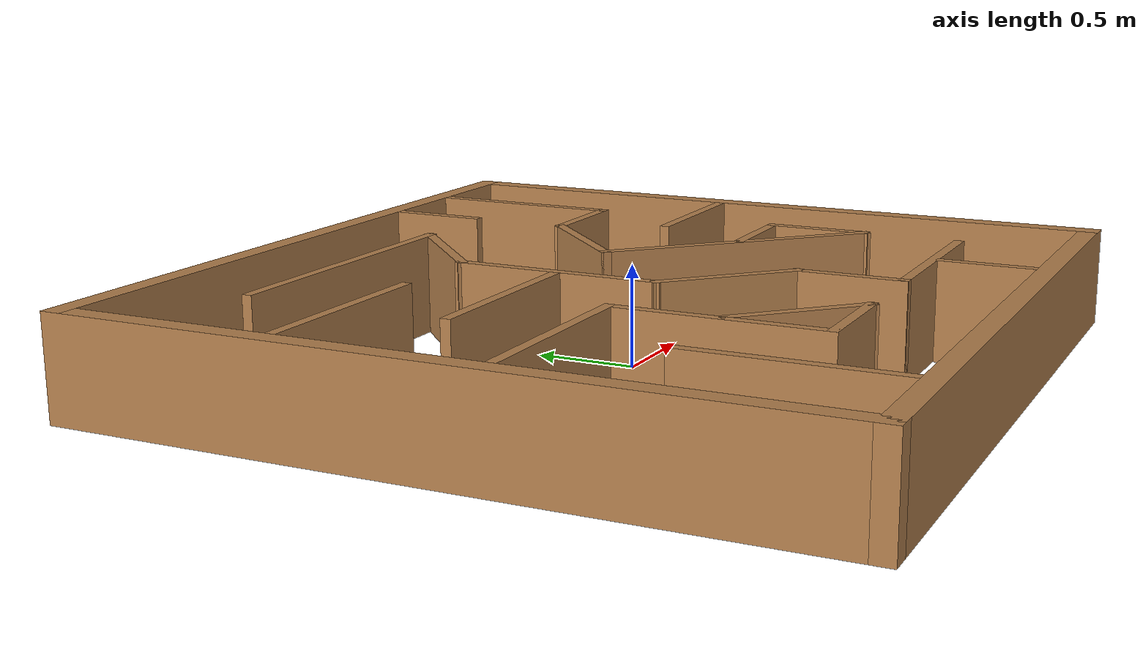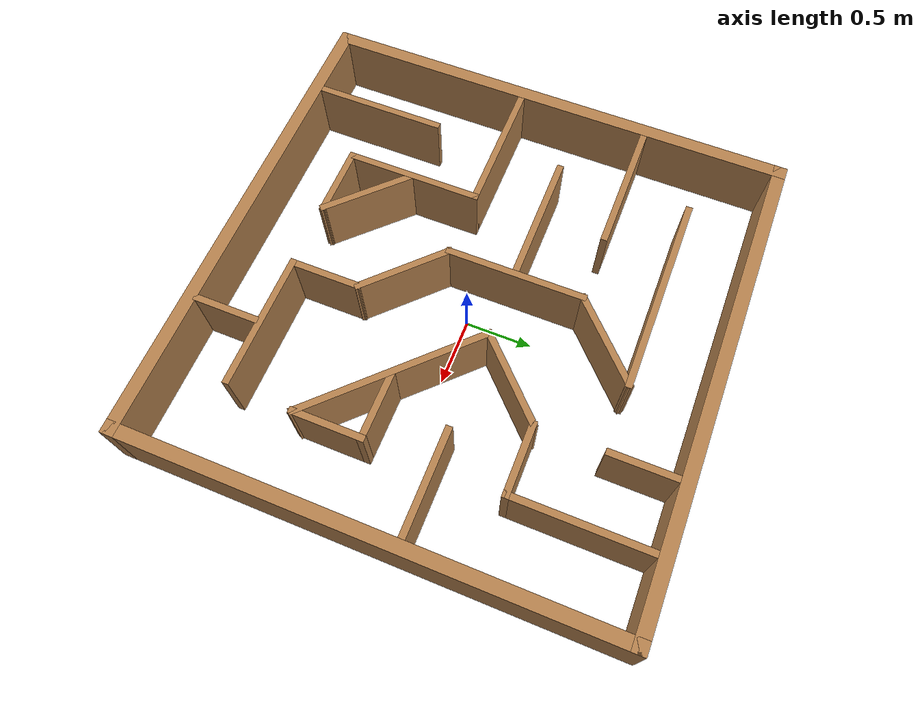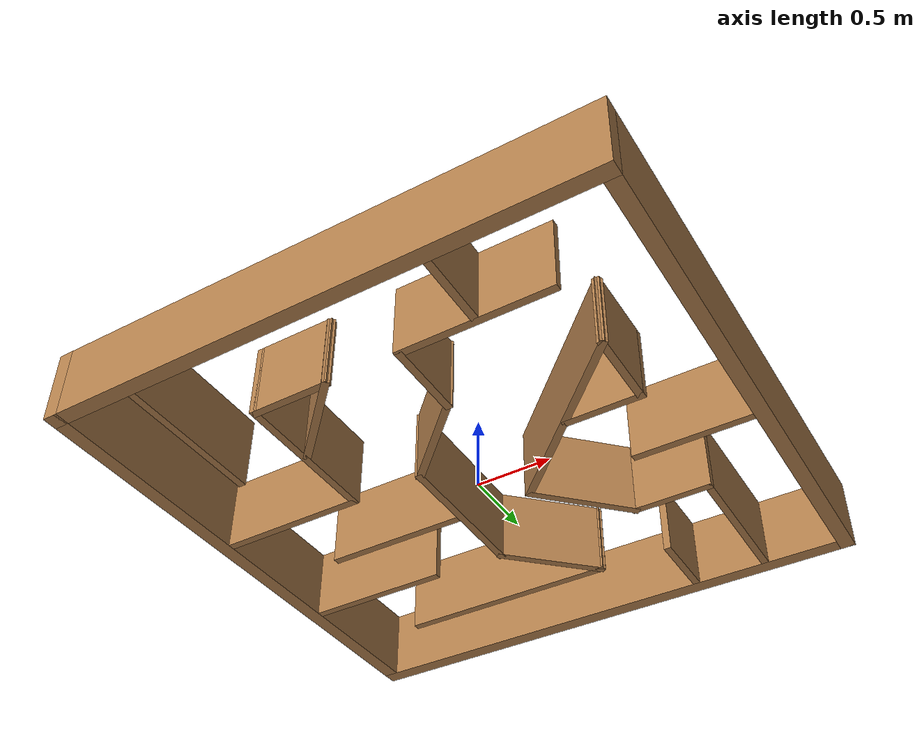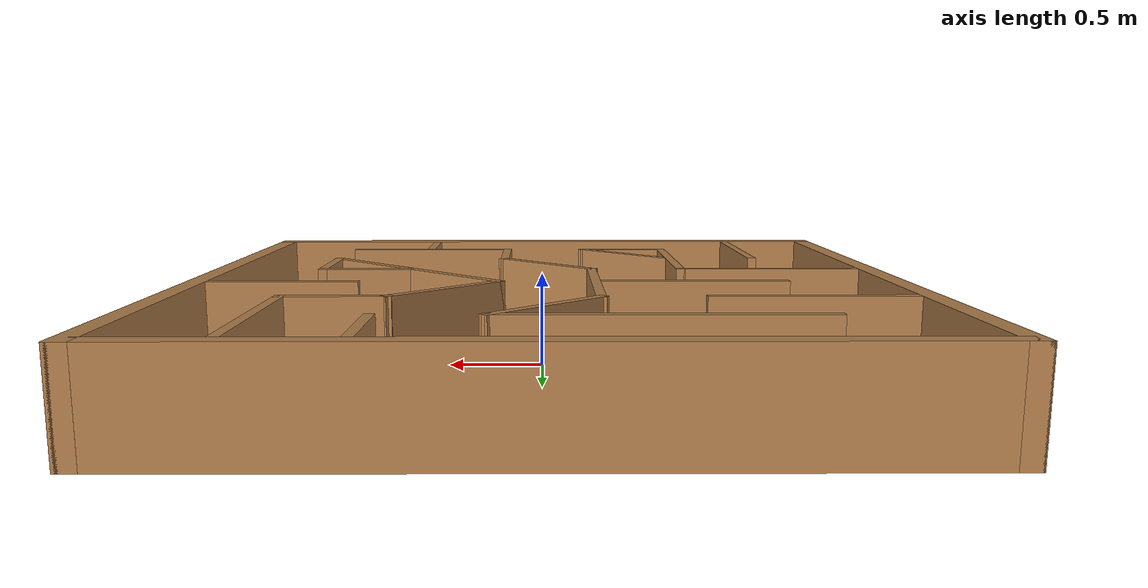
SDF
<?xml version='1.0'?>
<sdf version='1.7'>
  <model name='maze'>
    <pose>-0.025 0.005 0 0 -0 0</pose>
    <link name='Wall_10'>
      <collision name='Wall_10_Collision'>
        <geometry>
          <box>
            <size>1.02 0.05 0.5</size>
          </box>
        </geometry>
        <pose>0 0 0.25 0 -0 0</pose>
      </collision>
      <visual name='Wall_10_Visual'>
        <pose>0 0 0.25 0 -0 0</pose>
        <geometry>
          <box>
            <size>1.02 0.05 0.5</size>
          </box>
        </geometry>
        <material>
          <script>
            <uri>file://materials/scripts/seamless_wood.material</uri>
            <name>Team08/SeamlessWood</name>
          </script>
          <ambient>1 1 1 1</ambient>
        </material>
        <meta>
          <layer>0</layer>
        </meta>
      </visual>
      <pose>1.25 1.235 0 0 -0 -1.5708</pose>
    </link>
    <link name='Wall_12'>
      <collision name='Wall_12_Collision'>
        <geometry>
          <box>
            <size>0.5 0.05 0.5</size>
          </box>
        </geometry>
        <pose>0 0 0.25 0 -0 0</pose>
      </collision>
      <visual name='Wall_12_Visual'>
        <pose>0 0 0.25 0 -0 0</pose>
        <geometry>
          <box>
            <size>0.5 0.05 0.5</size>
          </box>
        </geometry>
        <material>
          <script>
            <uri>file://materials/scripts/seamless_wood.material</uri>
            <name>Team08/SeamlessWood</name>
          </script>
          <ambient>1 1 1 1</ambient>
        </material>
        <meta>
          <layer>0</layer>
        </meta>
      </visual>
      <pose>0.75 1.495 0 0 -0 -1.5708</pose>
    </link>
    <link name='Wall_16'>
      <collision name='Wall_16_Collision'>
        <geometry>
          <box>
            <size>0.55 0.05 0.5</size>
          </box>
        </geometry>
        <pose>0 0 0.25 0 -0 0</pose>
      </collision>
      <visual name='Wall_16_Visual'>
        <pose>0 0 0.25 0 -0 0</pose>
        <geometry>
          <box>
            <size>0.55 0.05 0.5</size>
          </box>
        </geometry>
        <material>
          <script>
            <uri>file://materials/scripts/seamless_wood.material</uri>
            <name>Team08/SeamlessWood</name>
          </script>
          <ambient>1 1 1 1</ambient>
        </material>
        <meta>
          <layer>0</layer>
        </meta>
      </visual>
      <pose>1 0.75 0 0 -0 3.14159</pose>
    </link>
    <link name='Wall_18'>
      <collision name='Wall_18_Collision'>
        <geometry>
          <box>
            <size>0.757107 0.05 0.5</size>
          </box>
        </geometry>
        <pose>0 0 0.25 0 -0 0</pose>
      </collision>
      <visual name='Wall_18_Visual'>
        <pose>0 0 0.25 0 -0 0</pose>
        <geometry>
          <box>
            <size>0.757107 0.05 0.5</size>
          </box>
        </geometry>
        <material>
          <script>
            <uri>file://materials/scripts/seamless_wood.material</uri>
            <name>Team08/SeamlessWood</name>
          </script>
          <ambient>1 1 1 1</ambient>
        </material>
        <meta>
          <layer>0</layer>
        </meta>
      </visual>
      <pose>0.5 0.5 0 0 -0 -2.35619</pose>
    </link>
    <link name='Wall_2'>
      <collision name='Wall_2_Collision'>
        <geometry>
          <box>
            <size>3.69 0.1 0.5</size>
          </box>
        </geometry>
        <pose>0 0 0.25 0 -0 0</pose>
      </collision>
      <visual name='Wall_2_Visual'>
        <pose>0 0 0.25 0 -0 0</pose>
        <geometry>
          <box>
            <size>3.69 0.1 0.5</size>
          </box>
        </geometry>
        <material>
          <script>
            <uri>file://materials/scripts/seamless_wood.material</uri>
            <name>Team08/SeamlessWood</name>
          </script>
          <ambient>0.509804 0.478431 0.490196 1</ambient>
        </material>
        <meta>
          <layer>0</layer>
        </meta>
      </visual>
      <pose>0 1.795 0 0 -0 0</pose>
    </link>
    <link name='Wall_20'>
      <collision name='Wall_20_Collision'>
        <geometry>
          <box>
            <size>1.46421 0.05 0.5</size>
          </box>
        </geometry>
        <pose>0 0 0.25 0 -0 0</pose>
      </collision>
      <visual name='Wall_20_Visual'>
        <pose>0 0 0.25 0 -0 0</pose>
        <geometry>
          <box>
            <size>1.46421 0.05 0.5</size>
          </box>
        </geometry>
        <material>
          <script>
            <uri>file://materials/scripts/seamless_wood.material</uri>
            <name>Team08/SeamlessWood</name>
          </script>
          <ambient>1 1 1 1</ambient>
        </material>
        <meta>
          <layer>0</layer>
        </meta>
      </visual>
      <pose>0.75 -0.25 0 0 -0 -0.785398</pose>
    </link>
    <link name='Wall_22'>
      <collision name='Wall_22_Collision'>
        <geometry>
          <box>
            <size>0.55 0.05 0.5</size>
          </box>
        </geometry>
        <pose>0 0 0.25 0 -0 0</pose>
      </collision>
      <visual name='Wall_22_Visual'>
        <pose>0 0 0.25 0 -0 0</pose>
        <geometry>
          <box>
            <size>0.55 0.05 0.5</size>
          </box>
        </geometry>
        <material>
          <script>
            <uri>file://materials/scripts/seamless_wood.material</uri>
            <name>Team08/SeamlessWood</name>
          </script>
          <ambient>1 1 1 1</ambient>
        </material>
        <meta>
          <layer>0</layer>
        </meta>
      </visual>
      <pose>1.25 -0.5 0 0 -0 1.5708</pose>
    </link>
    <link name='Wall_24'>
      <collision name='Wall_24_Collision'>
        <geometry>
          <box>
            <size>0.53 0.05 0.5</size>
          </box>
        </geometry>
        <pose>0 0 0.25 0 -0 0</pose>
      </collision>
      <visual name='Wall_24_Visual'>
        <pose>0 0 0.25 0 -0 0</pose>
        <geometry>
          <box>
            <size>0.53 0.05 0.5</size>
          </box>
        </geometry>
        <material>
          <script>
            <uri>file://materials/scripts/seamless_wood.material</uri>
            <name>Team08/SeamlessWood</name>
          </script>
          <ambient>1 1 1 1</ambient>
        </material>
        <meta>
          <layer>0</layer>
        </meta>
      </visual>
      <pose>1.01 -0.25 0 0 -0 3.14159</pose>
    </link>
    <link name='Wall_26'>
      <collision name='Wall_26_Collision'>
        <geometry>
          <box>
            <size>0.78 0.05 0.5</size>
          </box>
        </geometry>
        <pose>0 0 0.25 0 -0 0</pose>
      </collision>
      <visual name='Wall_26_Visual'>
        <pose>0 0 0.25 0 -0 0</pose>
        <geometry>
          <box>
            <size>0.78 0.05 0.5</size>
          </box>
        </geometry>
        <material>
          <script>
            <uri>file://materials/scripts/seamless_wood.material</uri>
            <name>Team08/SeamlessWood</name>
          </script>
          <ambient>1 1 1 1</ambient>
        </material>
        <meta>
          <layer>0</layer>
        </meta>
      </visual>
      <pose>1.355 0.25 0 0 -0 3.14159</pose>
    </link>
    <link name='Wall_28'>
      <collision name='Wall_28_Collision'>
        <geometry>
          <box>
            <size>0.5 0.05 0.5</size>
          </box>
        </geometry>
        <pose>0 0 0.25 0 -0 0</pose>
      </collision>
      <visual name='Wall_28_Visual'>
        <pose>0 0 0.25 0 -0 0</pose>
        <geometry>
          <box>
            <size>0.5 0.05 0.5</size>
          </box>
        </geometry>
        <material>
          <script>
            <uri>file://materials/scripts/seamless_wood.material</uri>
            <name>Team08/SeamlessWood</name>
          </script>
          <ambient>1 1 1 1</ambient>
        </material>
        <meta>
          <layer>0</layer>
        </meta>
      </visual>
      <pose>0.75 -1.515 0 0 -0 1.5708</pose>
    </link>
    <link name='Wall_30'>
      <collision name='Wall_30_Collision'>
        <geometry>
          <box>
            <size>1 0.05 0.5</size>
          </box>
        </geometry>
        <pose>0 0 0.25 0 -0 0</pose>
      </collision>
      <visual name='Wall_30_Visual'>
        <pose>0 0 0.25 0 -0 0</pose>
        <geometry>
          <box>
            <size>1 0.05 0.5</size>
          </box>
        </geometry>
        <material>
          <script>
            <uri>file://materials/scripts/seamless_wood.material</uri>
            <name>Team08/SeamlessWood</name>
          </script>
          <ambient>1 1 1 1</ambient>
        </material>
        <meta>
          <layer>0</layer>
        </meta>
      </visual>
      <pose>-1.25 -1.245 0 0 -0 1.5708</pose>
    </link>
    <link name='Wall_32'>
      <collision name='Wall_32_Collision'>
        <geometry>
          <box>
            <size>1 0.05 0.5</size>
          </box>
        </geometry>
        <pose>0 0 0.25 0 -0 0</pose>
      </collision>
      <visual name='Wall_32_Visual'>
        <pose>0 0 0.25 0 -0 0</pose>
        <geometry>
          <box>
            <size>1 0.05 0.5</size>
          </box>
        </geometry>
        <material>
          <script>
            <uri>file://materials/scripts/seamless_wood.material</uri>
            <name>Team08/SeamlessWood</name>
          </script>
          <ambient>1 1 1 1</ambient>
        </material>
        <meta>
          <layer>0</layer>
        </meta>
      </visual>
      <pose>-1.245 0.75 0 0 -0 0</pose>
    </link>
    <link name='Wall_34'>
      <collision name='Wall_34_Collision'>
        <geometry>
          <box>
            <size>1.02 0.05 0.5</size>
          </box>
        </geometry>
        <pose>0 0 0.25 0 -0 0</pose>
      </collision>
      <visual name='Wall_34_Visual'>
        <pose>0 0 0.25 0 -0 0</pose>
        <geometry>
          <box>
            <size>1.02 0.05 0.5</size>
          </box>
        </geometry>
        <material>
          <script>
            <uri>file://materials/scripts/seamless_wood.material</uri>
            <name>Team08/SeamlessWood</name>
          </script>
          <ambient>1 1 1 1</ambient>
        </material>
        <meta>
          <layer>0</layer>
        </meta>
      </visual>
      <pose>-1.235 -0.25 0 0 -0 0</pose>
    </link>
    <link name='Wall_36'>
      <collision name='Wall_36_Collision'>
        <geometry>
          <box>
            <size>1.05 0.05 0.5</size>
          </box>
        </geometry>
        <pose>0 0 0.25 0 -0 0</pose>
      </collision>
      <visual name='Wall_36_Visual'>
        <pose>0 0 0.25 0 -0 0</pose>
        <geometry>
          <box>
            <size>1.05 0.05 0.5</size>
          </box>
        </geometry>
        <material>
          <script>
            <uri>file://materials/scripts/seamless_wood.material</uri>
            <name>Team08/SeamlessWood</name>
          </script>
          <ambient>1 1 1 1</ambient>
        </material>
        <meta>
          <layer>0</layer>
        </meta>
      </visual>
      <pose>-0.75 -0.75 0 0 -0 -1.5708</pose>
    </link>
    <link name='Wall_38'>
      <collision name='Wall_38_Collision'>
        <geometry>
          <box>
            <size>0.55 0.05 0.5</size>
          </box>
        </geometry>
        <pose>0 0 0.25 0 -0 0</pose>
      </collision>
      <visual name='Wall_38_Visual'>
        <pose>0 0 0.25 0 -0 0</pose>
        <geometry>
          <box>
            <size>0.55 0.05 0.5</size>
          </box>
        </geometry>
        <material>
          <script>
            <uri>file://materials/scripts/seamless_wood.material</uri>
            <name>Team08/SeamlessWood</name>
          </script>
          <ambient>1 1 1 1</ambient>
        </material>
        <meta>
          <layer>0</layer>
        </meta>
      </visual>
      <pose>-0.5 -1.25 0 0 -0 0</pose>
    </link>
    <link name='Wall_4'>
      <collision name='Wall_4_Collision'>
        <geometry>
          <box>
            <size>3.69 0.1 0.5</size>
          </box>
        </geometry>
        <pose>0 0 0.25 0 -0 0</pose>
      </collision>
      <visual name='Wall_4_Visual'>
        <pose>0 0 0.25 0 -0 0</pose>
        <geometry>
          <box>
            <size>3.69 0.1 0.5</size>
          </box>
        </geometry>
        <material>
          <script>
            <uri>file://materials/scripts/seamless_wood.material</uri>
            <name>Team08/SeamlessWood</name>
          </script>
          <ambient>0.509804 0.478431 0.490196 1</ambient>
        </material>
        <meta>
          <layer>0</layer>
        </meta>
      </visual>
      <pose>1.795 0 0 0 -0 -1.5708</pose>
    </link>
    <link name='Wall_40'>
      <collision name='Wall_40_Collision'>
        <geometry>
          <box>
            <size>0.725 0.05 0.5</size>
          </box>
        </geometry>
        <pose>0 0 0.25 0 -0 0</pose>
      </collision>
      <visual name='Wall_40_Visual'>
        <pose>0 0 0.25 0 -0 0</pose>
        <geometry>
          <box>
            <size>0.725 0.05 0.5</size>
          </box>
        </geometry>
        <material>
          <script>
            <uri>file://materials/scripts/seamless_wood.material</uri>
            <name>Team08/SeamlessWood</name>
          </script>
          <ambient>1 1 1 1</ambient>
        </material>
        <meta>
          <layer>0</layer>
        </meta>
      </visual>
      <pose>-0.4885 -1.0115 0 0 -0 2.35619</pose>
    </link>
    <link name='Wall_42'>
      <collision name='Wall_42_Collision'>
        <geometry>
          <box>
            <size>1.525 0.05 0.5</size>
          </box>
        </geometry>
        <pose>0 0 0.25 0 -0 0</pose>
      </collision>
      <visual name='Wall_42_Visual'>
        <pose>0 0 0.25 0 -0 0</pose>
        <geometry>
          <box>
            <size>1.525 0.05 0.5</size>
          </box>
        </geometry>
        <material>
          <script>
            <uri>file://materials/scripts/seamless_wood.material</uri>
            <name>Team08/SeamlessWood</name>
          </script>
          <ambient>1 1 1 1</ambient>
        </material>
        <meta>
          <layer>0</layer>
        </meta>
      </visual>
      <pose>-0.4825 1.25 0 0 -0 0</pose>
    </link>
    <link name='Wall_44'>
      <collision name='Wall_44_Collision'>
        <geometry>
          <box>
            <size>0.753651 0.05 0.5</size>
          </box>
        </geometry>
        <pose>0 0 0.25 0 -0 0</pose>
      </collision>
      <visual name='Wall_44_Visual'>
        <pose>0 0 0.25 0 -0 0</pose>
        <geometry>
          <box>
            <size>0.753651 0.05 0.5</size>
          </box>
        </geometry>
        <material>
          <script>
            <uri>file://materials/scripts/seamless_wood.material</uri>
            <name>Team08/SeamlessWood</name>
          </script>
          <ambient>1 1 1 1</ambient>
        </material>
        <meta>
          <layer>0</layer>
        </meta>
      </visual>
      <pose>0.0025 1.005 0 0 -0 -2.37127</pose>
    </link>
    <link name='Wall_46'>
      <collision name='Wall_46_Collision'>
        <geometry>
          <box>
            <size>1.06 0.05 0.5</size>
          </box>
        </geometry>
        <pose>0 0 0.25 0 -0 0</pose>
      </collision>
      <visual name='Wall_46_Visual'>
        <pose>0 0 0.25 0 -0 0</pose>
        <geometry>
          <box>
            <size>1.06 0.05 0.5</size>
          </box>
        </geometry>
        <material>
          <script>
            <uri>file://materials/scripts/seamless_wood.material</uri>
            <name>Team08/SeamlessWood</name>
          </script>
          <ambient>1 1 1 1</ambient>
        </material>
        <meta>
          <layer>0</layer>
        </meta>
      </visual>
      <pose>-0.25 0.255 0 0 -0 -1.5708</pose>
    </link>
    <link name='Wall_48'>
      <collision name='Wall_48_Collision'>
        <geometry>
          <box>
            <size>0.970001 0.05 0.5</size>
          </box>
        </geometry>
        <pose>0 0 0.25 0 -0 0</pose>
      </collision>
      <visual name='Wall_48_Visual'>
        <pose>0 0 0.25 0 -0 0</pose>
        <geometry>
          <box>
            <size>0.970001 0.05 0.5</size>
          </box>
        </geometry>
        <material>
          <script>
            <uri>file://materials/scripts/seamless_wood.material</uri>
            <name>Team08/SeamlessWood</name>
          </script>
          <ambient>1 1 1 1</ambient>
        </material>
        <meta>
          <layer>0</layer>
        </meta>
      </visual>
      <pose>-0.76 0.249 0 0 -0 3.14159</pose>
    </link>
    <link name='Wall_50'>
      <collision name='Wall_50_Collision'>
        <geometry>
          <box>
            <size>0.750071 0.05 0.5</size>
          </box>
        </geometry>
        <pose>0 0 0.25 0 -0 0</pose>
      </collision>
      <visual name='Wall_50_Visual'>
        <pose>0 0 0.25 0 -0 0</pose>
        <geometry>
          <box>
            <size>0.750071 0.05 0.5</size>
          </box>
        </geometry>
        <material>
          <script>
            <uri>file://materials/scripts/seamless_wood.material</uri>
            <name>Team08/SeamlessWood</name>
          </script>
          <ambient>1 1 1 1</ambient>
        </material>
        <meta>
          <layer>0</layer>
        </meta>
      </visual>
      <pose>0 -0.495 0 0 -0 -0.775298</pose>
    </link>
    <link name='Wall_52'>
      <collision name='Wall_52_Collision'>
        <geometry>
          <box>
            <size>0.56 0.05 0.5</size>
          </box>
        </geometry>
        <pose>0 0 0.25 0 -0 0</pose>
      </collision>
      <visual name='Wall_52_Visual'>
        <pose>0 0 0.25 0 -0 0</pose>
        <geometry>
          <box>
            <size>0.56 0.05 0.5</size>
          </box>
        </geometry>
        <material>
          <script>
            <uri>file://materials/scripts/seamless_wood.material</uri>
            <name>Team08/SeamlessWood</name>
          </script>
          <ambient>1 1 1 1</ambient>
        </material>
        <meta>
          <layer>0</layer>
        </meta>
      </visual>
      <pose>0.25 -0.995 0 0 -0 -1.5708</pose>
    </link>
    <link name='Wall_54'>
      <collision name='Wall_54_Collision'>
        <geometry>
          <box>
            <size>1.02 0.05 0.5</size>
          </box>
        </geometry>
        <pose>0 0 0.25 0 -0 0</pose>
      </collision>
      <visual name='Wall_54_Visual'>
        <pose>0 0 0.25 0 -0 0</pose>
        <geometry>
          <box>
            <size>1.02 0.05 0.5</size>
          </box>
        </geometry>
        <material>
          <script>
            <uri>file://materials/scripts/seamless_wood.material</uri>
            <name>Team08/SeamlessWood</name>
          </script>
          <ambient>1 1 1 1</ambient>
        </material>
        <meta>
          <layer>0</layer>
        </meta>
      </visual>
      <pose>0.735 -1.25 0 0 -0 0</pose>
    </link>
    <link name='Wall_6'>
      <collision name='Wall_6_Collision'>
        <geometry>
          <box>
            <size>3.69 0.1 0.5</size>
          </box>
        </geometry>
        <pose>0 0 0.25 0 -0 0</pose>
      </collision>
      <visual name='Wall_6_Visual'>
        <pose>0 0 0.25 0 -0 0</pose>
        <geometry>
          <box>
            <size>3.69 0.1 0.5</size>
          </box>
        </geometry>
        <material>
          <script>
            <uri>file://materials/scripts/seamless_wood.material</uri>
            <name>Team08/SeamlessWood</name>
          </script>
          <ambient>0.509804 0.478431 0.490196 1</ambient>
        </material>
        <meta>
          <layer>0</layer>
        </meta>
      </visual>
      <pose>0 -1.795 0 0 -0 3.14159</pose>
    </link>
    <link name='Wall_8'>
      <collision name='Wall_8_Collision'>
        <geometry>
          <box>
            <size>3.69 0.1 0.5</size>
          </box>
        </geometry>
        <pose>0 0 0.25 0 -0 0</pose>
      </collision>
      <visual name='Wall_8_Visual'>
        <pose>0 0 0.25 0 -0 0</pose>
        <geometry>
          <box>
            <size>3.69 0.1 0.5</size>
          </box>
        </geometry>
        <material>
          <script>
            <uri>file://materials/scripts/seamless_wood.material</uri>
            <name>Team08/SeamlessWood</name>
          </script>
          <ambient>0.509804 0.478431 0.490196 1</ambient>
        </material>
        <meta>
          <layer>0</layer>
        </meta>
      </visual>
      <pose>-1.795 0 0 0 -0 1.5708</pose>
    </link>
    <static>1</static>
  </model>
</sdf>
